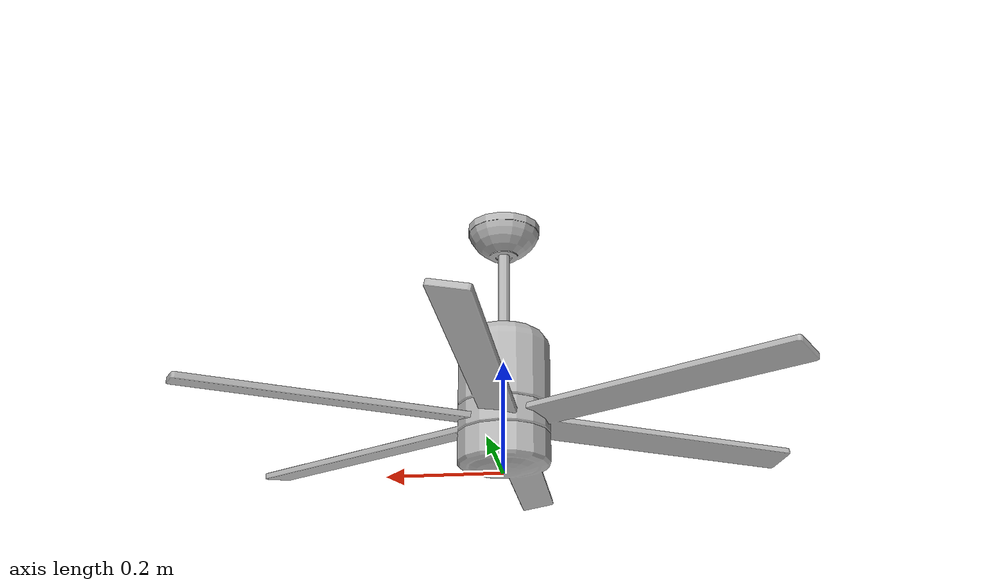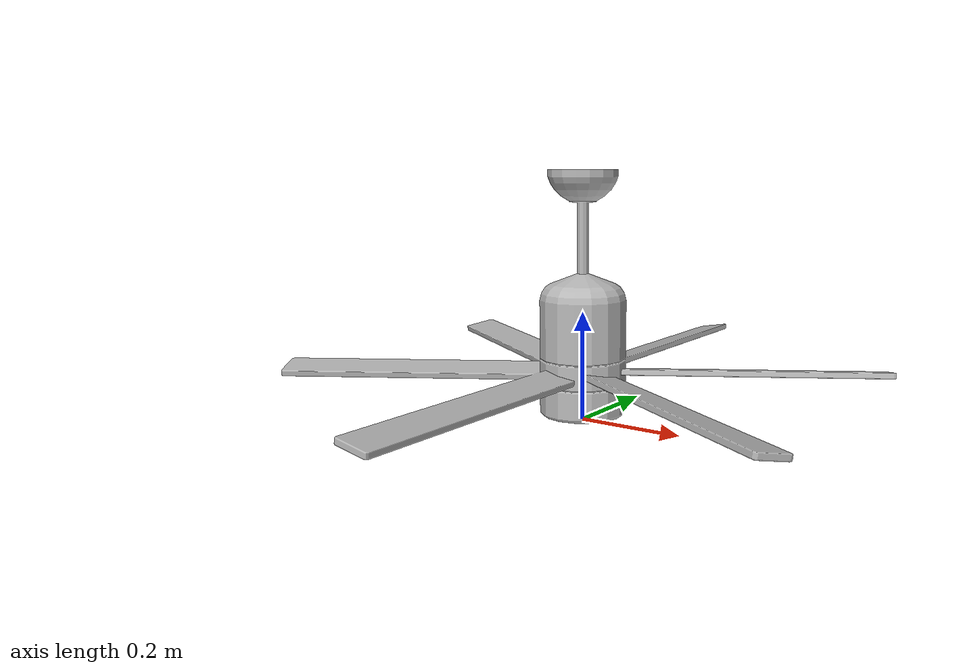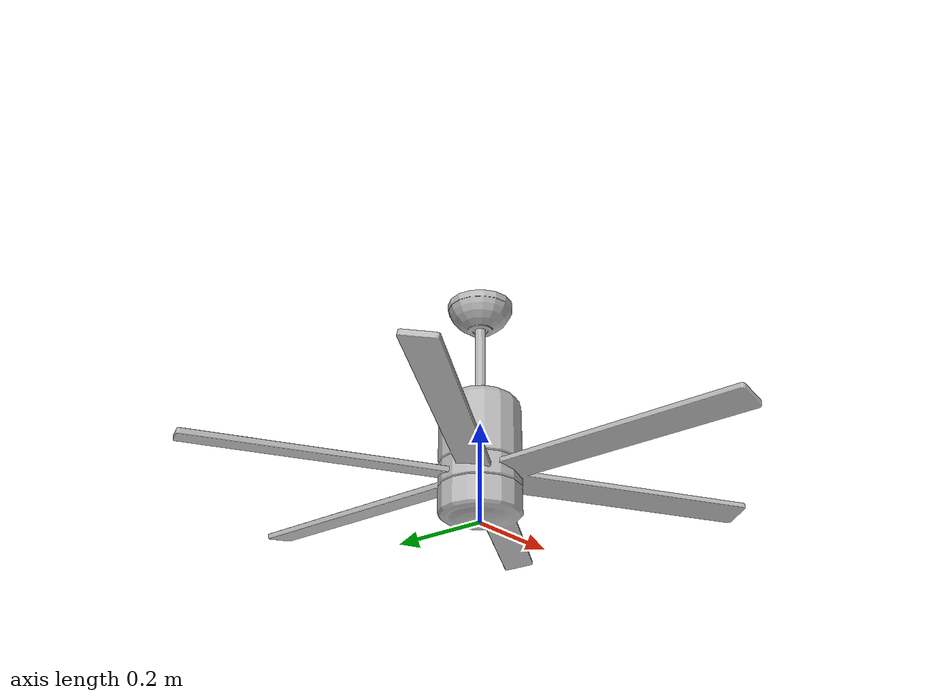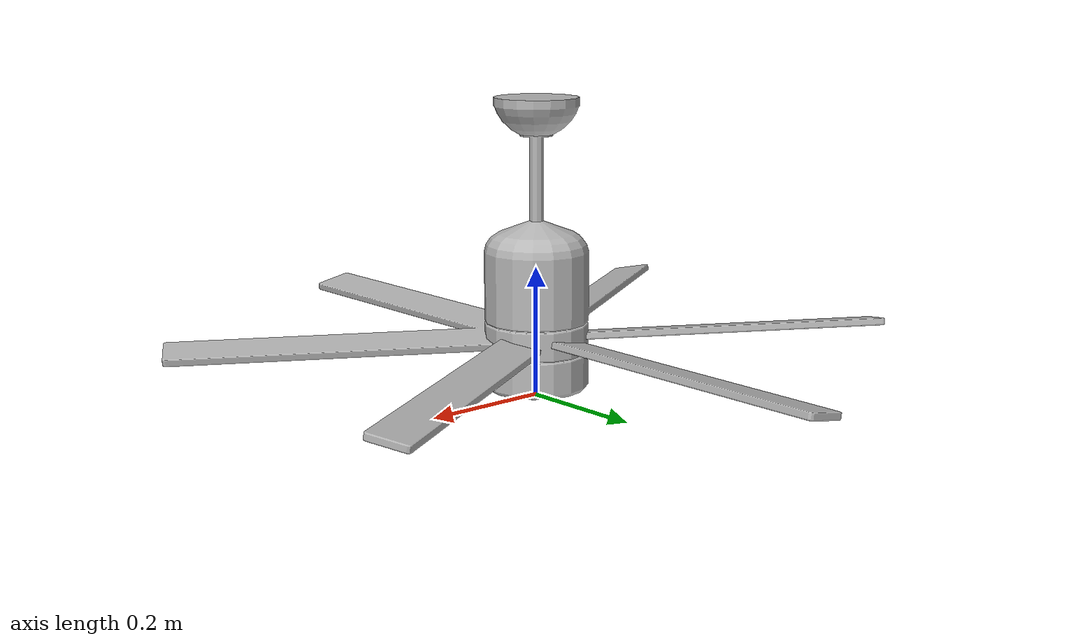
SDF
<?xml version='1.0'?>
<sdf version='1.4'>
  <model name='650'>
    <pose>0 0 0 0 0 0</pose>
    <static>true</static>
    <link name='link'>
      <collision name='collision'>
        <pose>0 0 0 0 0 0</pose>
        <geometry>
          <box>
            <size>0.99975 1.12 2</size>
          </box>
        </geometry>
      </collision>
      <visual name='visual'>
        <pose>0 0 0 0 0 0</pose>
        <geometry>
          <mesh><uri>model://650/650.dae</uri></mesh>
        </geometry>
      </visual>
    </link>
  </model>
</sdf>
